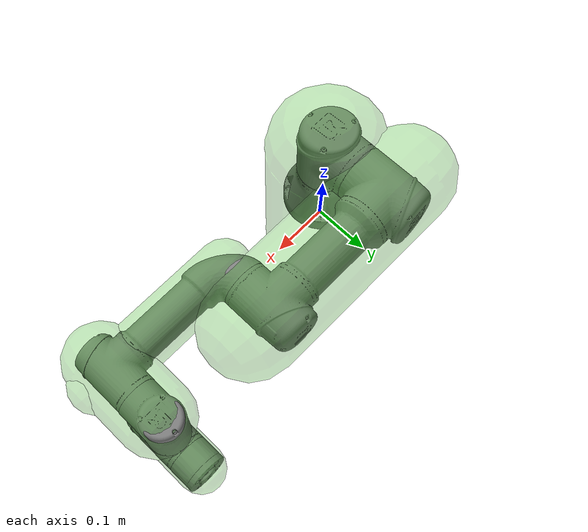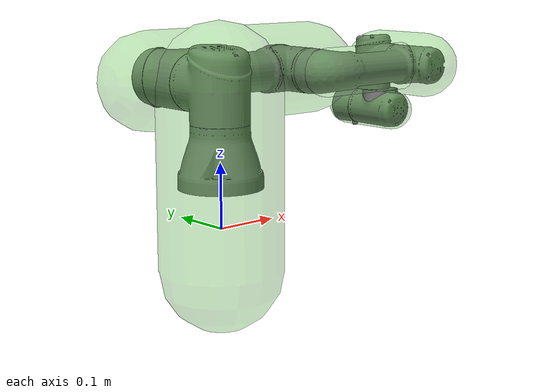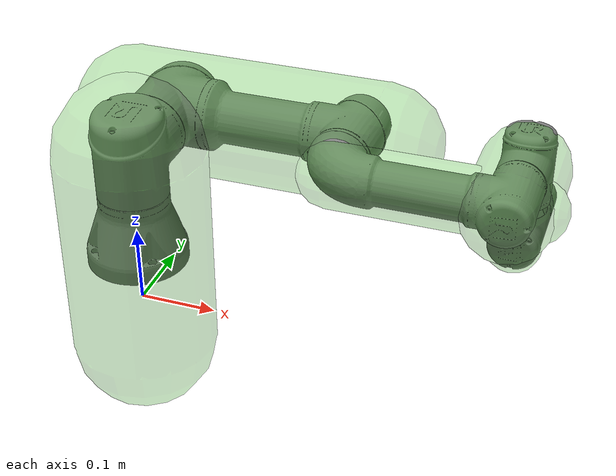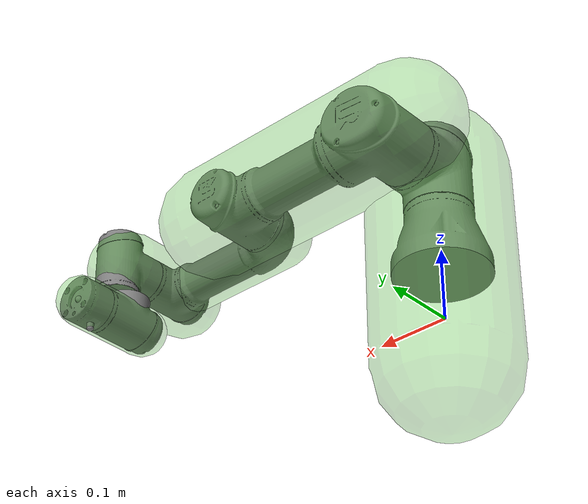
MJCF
<?xml version='1.0' encoding='utf-8'?>
<mujoco model="ur3">
  <option gravity="0 0 0" />
  <visual>
    <global offwidth="2048" offheight="1536" />
  </visual>

  <compiler angle="radian" />

  <asset>
    <material name="gray" rgba="0.6 0.6 0.6 1.0" />
    <material name="LightGrey" rgba="0.7 0.7 0.7 1.0" />
    <material name="default_material" rgba="0.7 0.7 0.7 1" />
    <material name="collision_material" rgba="0.7 0.7 0.7 0.9" />
    <mesh name="base.stl" file="meshes/base.stl" />
    <mesh name="shoulder.stl" file="meshes/shoulder.stl" />
    <mesh name="upperarm.stl" file="meshes/upperarm.stl" />
    <mesh name="forearm.stl" file="meshes/forearm.stl" />
    <mesh name="wrist1.stl" file="meshes/wrist1.stl" />
    <mesh name="wrist2.stl" file="meshes/wrist2.stl" />
    <mesh name="wrist3.stl" file="meshes/wrist3.stl" />
  </asset>

  <worldbody>
    <light name="top" ambient="1 1 1" pos="0 0 7" />

    <body name="box_base" pos="0 0 0" quat="1 0 0 0">
      <freejoint name="free_joint" />
      <inertial pos="0.0 0.0 0" quat="1.0 0.0 0.0 0.0" mass="5.0" diaginertia="0.008 0.008 0.01" />
      <geom name="box_base_collision" pos="0 0 0" quat="1 0 0 0" type="box" size="0.0625 0.0625 0.0625" rgba="0.2 0.1 0.7 0.5" group="2" />
      <body name="base_link" pos="0 0 0.0625" quat="1.0 0.0 0.0 0.0">
        <inertial pos="0.0 0.0 0.0" quat="1.0 0.0 0.0 0.0" mass="2.0" diaginertia="0.0030531654454 0.0030531654454 0.005625" />
        <geom name="base_link_collision" pos="0 0 0" quat="1 0 0 0" type="mesh" mesh="base.stl" />
        <body name="shoulder_link" pos="0.0 0.0 0.1519" quat="1.0 0.0 0.0 0.0">
          <joint name="shoulder_pan_joint" type="hinge" ref="0.0" range="-6.28318530718 6.28318530718" axis="0 0 1" />
          <inertial pos="0.0 0.0 0.0" quat="1.0 0.0 0.0 0.0" mass="2.0" diaginertia="0.0080931634294 0.0080931634294 0.005625" />
          <geom name="shoulder_link_collision" pos="0 0 0" quat="1 0 0 0" type="mesh" mesh="shoulder.stl" />
          <body name="upper_arm_link" pos="0.0 0.1198 0.0" quat="0.7071067811882787 0.0 0.7071067811848163 0.0">
            <joint name="shoulder_lift_joint" type="hinge" ref="0.0" range="-4.014257279586958 0.6981317007977318" axis="0 1 0" />
            <inertial pos="0.0 0.0 0.121825" quat="1.0 0.0 0.0 0.0" mass="3.42" diaginertia="0.0217284832211 0.0217284832211 0.00961875" />
            <geom name="upper_arm_link_collision" pos="0 0 0" quat="1 0 0 0" type="mesh" mesh="upperarm.stl" />
            <body name="forearm_link" pos="0.0 -0.0925 0.24365" quat="1.0 0.0 0.0 0.0">
              <joint name="elbow_joint" type="hinge" ref="0.0" range="-2.443460952792061 2.0943951023931953" axis="0 1 0" />
              <inertial pos="0.0 0.0 0.106625" quat="1.0 0.0 0.0 0.0" mass="1.26" diaginertia="0.00654680644378 0.00654680644378 0.00354375" />
              <geom name="forearm_link_collision" pos="0 0 0" quat="1 0 0 0" type="mesh" mesh="forearm.stl" />
              <body name="wrist_1_link" pos="0.0 0.0 0.21325" quat="0.7071067811882787 0.0 0.7071067811848163 0.0">
                <joint name="wrist_1_joint" type="hinge" ref="0.0" range="-3.6651914291880923 0.5235987755982988" axis="0 1 0" />
                <inertial pos="0.0 0.0 0.0" quat="1.0 0.0 0.0 0.0" mass="0.8" diaginertia="0.002084999166 0.002084999166 0.00225" />
                <geom name="wrist_1_link_collision" pos="0 0 0" quat="1 0 0 0" type="mesh" mesh="wrist1.stl" />
                <body name="wrist_2_link" pos="0.0 0.08505 0.0" quat="1.0 0.0 0.0 0.0">
                  <joint name="wrist_2_joint" type="hinge" ref="0.0" range="-6.28318530718 6.28318530718" axis="0 0 1" />
                  <inertial pos="0.0 0.0 0.0" quat="1.0 0.0 0.0 0.0" mass="0.8" diaginertia="0.002084999166 0.002084999166 0.00225" />
                  <geom name="wrist_2_link_collision" pos="0 0 0" quat="1 0 0 0" type="mesh" mesh="wrist2.stl" />
                  <body name="wrist_3_link" pos="0.0 0.0 0.08535" quat="1.0 0.0 0.0 0.0">
                    <joint name="wrist_3_joint" type="hinge" ref="0.0" range="-6.28318530718 6.28318530718" axis="0 1 0" />
                    <inertial pos="0.0 0.0 0.0" quat="1.0 0.0 0.0 0.0" mass="0.35" diaginertia="0.000912187135125 0.000912187135125 0.000984375" />
                    <geom name="wrist_3_link_collision" pos="0 0 0" quat="1 0 0 0" type="mesh" mesh="wrist3.stl" />
                    <body name="camera_link" euler="4.712 0 3.14" pos="0 0.08535 0">
                      <inertial pos="0 0 0.01" mass="0.05" diaginertia="0.0 0.0 0.0" />
                      <geom name="camera_link_collision" pos="0 0 0.01" euler="3.14 0 3.14" type="box" rgba="0.2 0.7 0.1 0.5" size="0.01 0.01 0.01" />
                      <camera name="body_camera" pos="0 0 0" euler="3.14 0 0" />
                      <site name="camera_site" pos="0 0 0" euler="0 0 0" />

                    </body>
                    <geom name="wrist_stack_collision_capsule"
                      type="capsule"
                      fromto="0 -0.03 0   0 0.08 0"
                      size="0.035"
                      rgba="0.2 0.7 0.1 0.3" />
                  </body>

              </body>
              <geom name="wrist_1_link_collision_capsule"
                    type="capsule"
                    fromto="0 -0.02 0   0 0.09 0"
                    size="0.055"
                    rgba="0.2 0.7 0.1 0.3" />
              </body>
            <geom name="forearm_link_collision_capsule"
            type="capsule"
            fromto="0 0 0 0 0  0.24"
            size="0.04"
            rgba="0.2 0.7 0.1 0.3" />
            </body>
          <geom name="upper_arm_link_collision_capsule" type="capsule" fromto="-5.3875294e-06 -0.0033353008 -0.045880198 -5.3875294e-06 -0.0033353008 0.28237382" size="0.076983636" rgba="0.2 0.7 0.1 0.3"/>
          </body>
        </body>
      </body>
    <geom name="box_base_collision_capsule"
      type="capsule"
      fromto="0 0 -0.0625  0 0 0.215"
      size="0.095"
      rgba="0.2 0.7 0.1 0.3" />
  </body>
  </worldbody>

  <actuator>
  <general joint="free_joint" gear="1 0 0 0 0 0" gainprm="1 0 0" />
  <general joint="free_joint" gear="0 1 0 0 0 0" gainprm="1 0 0" />
  <general joint="free_joint" gear="0 0 1 0 0 0" gainprm="1 0 0" />
  <general joint="free_joint" gear="0 0 0 1 0 0" gainprm="1 0 0" />
  <general joint="free_joint" gear="0 0 0 0 1 0" gainprm="1 0 0" />
  <general joint="free_joint" gear="0 0 0 0 0 1" gainprm="1 0 0" />

  <motor joint="shoulder_pan_joint" ctrllimited="false" />
  <motor joint="shoulder_lift_joint" ctrllimited="false" />
  <motor joint="elbow_joint" ctrllimited="false" />
  <motor joint="wrist_1_joint" ctrllimited="false" />
  <motor joint="wrist_2_joint" ctrllimited="false" />
  <motor joint="wrist_3_joint" ctrllimited="false" />

  </actuator>
</mujoco>
